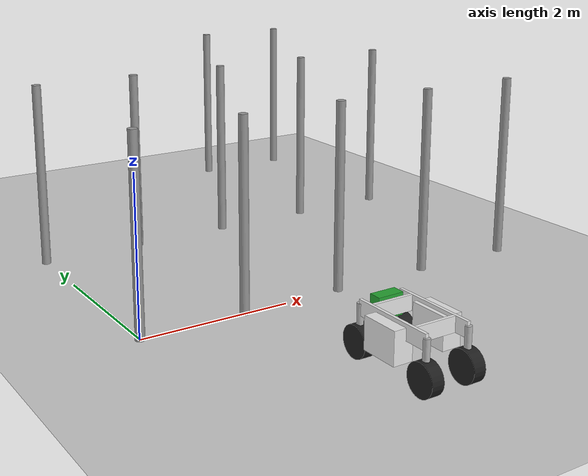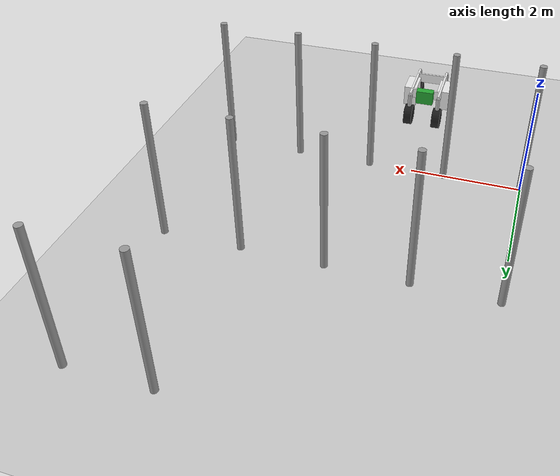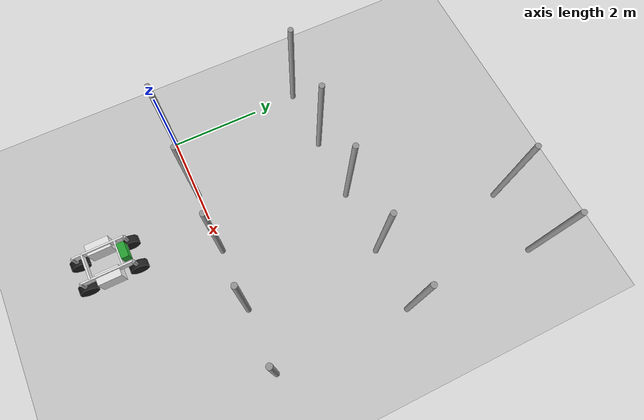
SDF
<sdf version="1.6">
 <world name="default">
  <model name="ground_plane">
   <static>1</static>
   <link name="link">
    <collision name="collision">
     <geometry><plane><normal>0 0 1</normal><size>100 100</size></plane></geometry>
     <surface><friction><ode><mu>100</mu><mu2>50</mu2></ode></friction></surface>
    </collision>
    <visual name="visual">
     <cast_shadows>0</cast_shadows>
     <geometry><plane><normal>0 0 1</normal><size>100 100</size></plane></geometry>
     <material>
      <script><uri>file://media/materials/scripts/gazebo.material</uri><name>Gazebo/Grey</name></script>
     </material>
    </visual>
   </link>
  </model>
  <model name="pole_8">
   <link name="link_0">
    <inertial>
     <mass>0.0364582</mass>
     <inertia>
      <ixx>0.00312124</ixx>
      <ixy>0</ixy>
      <ixz>0</ixz>
      <iyy>0.00312124</iyy>
      <iyz>0</iyz>
      <izz>0.00016615</izz>
     </inertia>
    </inertial>
    <visual name="visual">
     <geometry><cylinder><radius>0.06</radius><length>2.5</length></cylinder></geometry>
     <material>
      <lighting>1</lighting>
      <script><uri>file://media/materials/scripts/gazebo.material</uri><name>Gazebo/Grey</name></script>
      <ambient>0.3 0.3 0.3 1</ambient>
      <diffuse>0.7 0.7 0.7 1</diffuse>
      <specular>0.01 0.01 0.01 1</specular>
      <emissive>0 0 0 1</emissive>
      <shader type="vertex"><normal_map>__default__</normal_map></shader>
     </material>
    </visual>
    <collision name="collision">
     <geometry><cylinder><radius>0.06</radius><length>2.5</length></cylinder></geometry>
     <surface>
      <friction>
       <ode><mu>1</mu><mu2>1</mu2><fdir1>0 0 0</fdir1><slip1>0</slip1><slip2>0</slip2></ode>
       <torsional>
        <coefficient>1</coefficient>
        <patch_radius>0</patch_radius>
        <surface_radius>0</surface_radius>
        <use_patch_radius>1</use_patch_radius>
        <ode><slip>0</slip></ode>
       </torsional>
      </friction>
      <bounce><restitution_coefficient>0</restitution_coefficient><threshold>1e+06</threshold></bounce>
      <contact>
       <collide_without_contact>0</collide_without_contact>
       <collide_without_contact_bitmask>1</collide_without_contact_bitmask>
       <collide_bitmask>1</collide_bitmask>
       <ode>
        <soft_cfm>0</soft_cfm>
        <soft_erp>0.2</soft_erp>
        <kp>1e+13</kp>
        <kd>1</kd>
        <max_vel>0.01</max_vel>
        <min_depth>0</min_depth>
       </ode>
       <bullet>
        <split_impulse>1</split_impulse>
        <split_impulse_penetration_threshold>-0.01</split_impulse_penetration_threshold>
        <soft_cfm>0</soft_cfm>
        <soft_erp>0.2</soft_erp>
        <kp>1e+13</kp>
        <kd>1</kd>
       </bullet>
      </contact>
     </surface>
    </collision>
   </link>
   <static>0</static>
   <pose>1.40421 0.001404 1.25 0 1e-06 -0.018336</pose>
  </model>
  <model name="pole_9">
   <link name="link_0">
    <inertial>
     <mass>0.0364582</mass>
     <inertia>
      <ixx>0.00312124</ixx>
      <ixy>0</ixy>
      <ixz>0</ixz>
      <iyy>0.00312124</iyy>
      <iyz>0</iyz>
      <izz>0.00016615</izz>
     </inertia>
    </inertial>
    <visual name="visual">
     <geometry><cylinder><radius>0.06</radius><length>2.5</length></cylinder></geometry>
     <material>
      <lighting>1</lighting>
      <script><uri>file://media/materials/scripts/gazebo.material</uri><name>Gazebo/Grey</name></script>
      <ambient>0.3 0.3 0.3 1</ambient>
      <diffuse>0.7 0.7 0.7 1</diffuse>
      <specular>0.01 0.01 0.01 1</specular>
      <emissive>0 0 0 1</emissive>
      <shader type="vertex"><normal_map>__default__</normal_map></shader>
     </material>
    </visual>
    <collision name="collision">
     <geometry><cylinder><radius>0.06</radius><length>2.5</length></cylinder></geometry>
     <surface>
      <friction>
       <ode><mu>1</mu><mu2>1</mu2><fdir1>0 0 0</fdir1><slip1>0</slip1><slip2>0</slip2></ode>
       <torsional>
        <coefficient>1</coefficient>
        <patch_radius>0</patch_radius>
        <surface_radius>0</surface_radius>
        <use_patch_radius>1</use_patch_radius>
        <ode><slip>0</slip></ode>
       </torsional>
      </friction>
      <bounce><restitution_coefficient>0</restitution_coefficient><threshold>1e+06</threshold></bounce>
      <contact>
       <collide_without_contact>0</collide_without_contact>
       <collide_without_contact_bitmask>1</collide_without_contact_bitmask>
       <collide_bitmask>1</collide_bitmask>
       <ode>
        <soft_cfm>0</soft_cfm>
        <soft_erp>0.2</soft_erp>
        <kp>1e+13</kp>
        <kd>1</kd>
        <max_vel>0.01</max_vel>
        <min_depth>0</min_depth>
       </ode>
       <bullet>
        <split_impulse>1</split_impulse>
        <split_impulse_penetration_threshold>-0.01</split_impulse_penetration_threshold>
        <soft_cfm>0</soft_cfm>
        <soft_erp>0.2</soft_erp>
        <kp>1e+13</kp>
        <kd>1</kd>
       </bullet>
      </contact>
     </surface>
    </collision>
   </link>
   <static>0</static>
   <pose>2.80801 0.0015 1.25 -1e-06 -1e-06 -0.036118</pose>
  </model>
  <model name="pole_10">
   <link name="link_0">
    <inertial>
     <mass>0.0364582</mass>
     <inertia>
      <ixx>0.00312124</ixx>
      <ixy>0</ixy>
      <ixz>0</ixz>
      <iyy>0.00312124</iyy>
      <iyz>0</iyz>
      <izz>0.00016615</izz>
     </inertia>
    </inertial>
    <visual name="visual">
     <geometry><cylinder><radius>0.06</radius><length>2.5</length></cylinder></geometry>
     <material>
      <lighting>1</lighting>
      <script><uri>file://media/materials/scripts/gazebo.material</uri><name>Gazebo/Grey</name></script>
      <ambient>0.3 0.3 0.3 1</ambient>
      <diffuse>0.7 0.7 0.7 1</diffuse>
      <specular>0.01 0.01 0.01 1</specular>
      <emissive>0 0 0 1</emissive>
      <shader type="vertex"><normal_map>__default__</normal_map></shader>
     </material>
    </visual>
    <collision name="collision">
     <geometry><cylinder><radius>0.06</radius><length>2.5</length></cylinder></geometry>
     <surface>
      <friction>
       <ode><mu>1</mu><mu2>1</mu2><fdir1>0 0 0</fdir1><slip1>0</slip1><slip2>0</slip2></ode>
       <torsional>
        <coefficient>1</coefficient>
        <patch_radius>0</patch_radius>
        <surface_radius>0</surface_radius>
        <use_patch_radius>1</use_patch_radius>
        <ode><slip>0</slip></ode>
       </torsional>
      </friction>
      <bounce><restitution_coefficient>0</restitution_coefficient><threshold>1e+06</threshold></bounce>
      <contact>
       <collide_without_contact>0</collide_without_contact>
       <collide_without_contact_bitmask>1</collide_without_contact_bitmask>
       <collide_bitmask>1</collide_bitmask>
       <ode>
        <soft_cfm>0</soft_cfm>
        <soft_erp>0.2</soft_erp>
        <kp>1e+13</kp>
        <kd>1</kd>
        <max_vel>0.01</max_vel>
        <min_depth>0</min_depth>
       </ode>
       <bullet>
        <split_impulse>1</split_impulse>
        <split_impulse_penetration_threshold>-0.01</split_impulse_penetration_threshold>
        <soft_cfm>0</soft_cfm>
        <soft_erp>0.2</soft_erp>
        <kp>1e+13</kp>
        <kd>1</kd>
       </bullet>
      </contact>
     </surface>
    </collision>
   </link>
   <static>0</static>
   <pose>4.20395 0.00148 1.25 1e-06 4e-06 -0.019904</pose>
  </model>
  <model name="pole_11">
   <link name="link_0">
    <inertial>
     <mass>0.0364582</mass>
     <inertia>
      <ixx>0.00312124</ixx>
      <ixy>0</ixy>
      <ixz>0</ixz>
      <iyy>0.00312124</iyy>
      <iyz>0</iyz>
      <izz>0.00016615</izz>
     </inertia>
    </inertial>
    <visual name="visual">
     <geometry><cylinder><radius>0.06</radius><length>2.5</length></cylinder></geometry>
     <material>
      <lighting>1</lighting>
      <script><uri>file://media/materials/scripts/gazebo.material</uri><name>Gazebo/Grey</name></script>
      <ambient>0.3 0.3 0.3 1</ambient>
      <diffuse>0.7 0.7 0.7 1</diffuse>
      <specular>0.01 0.01 0.01 1</specular>
      <emissive>0 0 0 1</emissive>
      <shader type="vertex"><normal_map>__default__</normal_map></shader>
     </material>
    </visual>
    <collision name="collision">
     <geometry><cylinder><radius>0.06</radius><length>2.5</length></cylinder></geometry>
     <surface>
      <friction>
       <ode><mu>1</mu><mu2>1</mu2><fdir1>0 0 0</fdir1><slip1>0</slip1><slip2>0</slip2></ode>
       <torsional>
        <coefficient>1</coefficient>
        <patch_radius>0</patch_radius>
        <surface_radius>0</surface_radius>
        <use_patch_radius>1</use_patch_radius>
        <ode><slip>0</slip></ode>
       </torsional>
      </friction>
      <bounce><restitution_coefficient>0</restitution_coefficient><threshold>1e+06</threshold></bounce>
      <contact>
       <collide_without_contact>0</collide_without_contact>
       <collide_without_contact_bitmask>1</collide_without_contact_bitmask>
       <collide_bitmask>1</collide_bitmask>
       <ode>
        <soft_cfm>0</soft_cfm>
        <soft_erp>0.2</soft_erp>
        <kp>1e+13</kp>
        <kd>1</kd>
        <max_vel>0.01</max_vel>
        <min_depth>0</min_depth>
       </ode>
       <bullet>
        <split_impulse>1</split_impulse>
        <split_impulse_penetration_threshold>-0.01</split_impulse_penetration_threshold>
        <soft_cfm>0</soft_cfm>
        <soft_erp>0.2</soft_erp>
        <kp>1e+13</kp>
        <kd>1</kd>
       </bullet>
      </contact>
     </surface>
    </collision>
   </link>
   <static>0</static>
   <pose>5.61622 0.00124 1.25 -1e-06 -1e-06 -0.019713</pose>
  </model>
  <model name="pole_11_clone">
   <link name="link_0">
    <inertial>
     <mass>0.0364582</mass>
     <inertia>
      <ixx>0.00312124</ixx>
      <ixy>0</ixy>
      <ixz>0</ixz>
      <iyy>0.00312124</iyy>
      <iyz>0</iyz>
      <izz>0.00016615</izz>
     </inertia>
    </inertial>
    <visual name="visual">
     <geometry><cylinder><radius>0.06</radius><length>2.5</length></cylinder></geometry>
     <material>
      <lighting>1</lighting>
      <script><uri>file://media/materials/scripts/gazebo.material</uri><name>Gazebo/Grey</name></script>
      <ambient>0.3 0.3 0.3 1</ambient>
      <diffuse>0.7 0.7 0.7 1</diffuse>
      <specular>0.01 0.01 0.01 1</specular>
      <emissive>0 0 0 1</emissive>
      <shader type="vertex"><normal_map>__default__</normal_map></shader>
     </material>
    </visual>
    <collision name="collision">
     <geometry><cylinder><radius>0.06</radius><length>2.5</length></cylinder></geometry>
     <surface>
      <friction>
       <ode><mu>1</mu><mu2>1</mu2><fdir1>0 0 0</fdir1><slip1>0</slip1><slip2>0</slip2></ode>
       <torsional>
        <coefficient>1</coefficient>
        <patch_radius>0</patch_radius>
        <surface_radius>0</surface_radius>
        <use_patch_radius>1</use_patch_radius>
        <ode><slip>0</slip></ode>
       </torsional>
      </friction>
      <bounce><restitution_coefficient>0</restitution_coefficient><threshold>1e+06</threshold></bounce>
      <contact>
       <collide_without_contact>0</collide_without_contact>
       <collide_without_contact_bitmask>1</collide_without_contact_bitmask>
       <collide_bitmask>1</collide_bitmask>
       <ode>
        <soft_cfm>0</soft_cfm>
        <soft_erp>0.2</soft_erp>
        <kp>1e+13</kp>
        <kd>1</kd>
        <max_vel>0.01</max_vel>
        <min_depth>0</min_depth>
       </ode>
       <bullet>
        <split_impulse>1</split_impulse>
        <split_impulse_penetration_threshold>-0.01</split_impulse_penetration_threshold>
        <soft_cfm>0</soft_cfm>
        <soft_erp>0.2</soft_erp>
        <kp>1e+13</kp>
        <kd>1</kd>
       </bullet>
      </contact>
     </surface>
    </collision>
   </link>
   <static>0</static>
   <pose>0.000229 2.98148 1.25 -1e-06 1e-06 -0.018464</pose>
  </model>
  <model name="pole_3">
   <link name="link_0">
    <inertial>
     <mass>0.0364582</mass>
     <inertia>
      <ixx>0.00312124</ixx>
      <ixy>0</ixy>
      <ixz>0</ixz>
      <iyy>0.00312124</iyy>
      <iyz>0</iyz>
      <izz>0.00016615</izz>
     </inertia>
    </inertial>
    <visual name="visual">
     <geometry><cylinder><radius>0.06</radius><length>2.5</length></cylinder></geometry>
     <material>
      <lighting>1</lighting>
      <script><uri>file://media/materials/scripts/gazebo.material</uri><name>Gazebo/Grey</name></script>
      <ambient>0.3 0.3 0.3 1</ambient>
      <diffuse>0.7 0.7 0.7 1</diffuse>
      <specular>0.01 0.01 0.01 1</specular>
      <emissive>0 0 0 1</emissive>
      <shader type="vertex"><normal_map>__default__</normal_map></shader>
     </material>
    </visual>
    <collision name="collision">
     <geometry><cylinder><radius>0.06</radius><length>2.5</length></cylinder></geometry>
     <surface>
      <friction>
       <ode><mu>1</mu><mu2>1</mu2><fdir1>0 0 0</fdir1><slip1>0</slip1><slip2>0</slip2></ode>
       <torsional>
        <coefficient>1</coefficient>
        <patch_radius>0</patch_radius>
        <surface_radius>0</surface_radius>
        <use_patch_radius>1</use_patch_radius>
        <ode><slip>0</slip></ode>
       </torsional>
      </friction>
      <bounce><restitution_coefficient>0</restitution_coefficient><threshold>1e+06</threshold></bounce>
      <contact>
       <collide_without_contact>0</collide_without_contact>
       <collide_without_contact_bitmask>1</collide_without_contact_bitmask>
       <collide_bitmask>1</collide_bitmask>
       <ode>
        <soft_cfm>0</soft_cfm>
        <soft_erp>0.2</soft_erp>
        <kp>1e+13</kp>
        <kd>1</kd>
        <max_vel>0.01</max_vel>
        <min_depth>0</min_depth>
       </ode>
       <bullet>
        <split_impulse>1</split_impulse>
        <split_impulse_penetration_threshold>-0.01</split_impulse_penetration_threshold>
        <soft_cfm>0</soft_cfm>
        <soft_erp>0.2</soft_erp>
        <kp>1e+13</kp>
        <kd>1</kd>
       </bullet>
      </contact>
     </surface>
    </collision>
   </link>
   <static>0</static>
   <pose>1.40471 2.98102 1.25 -0 2e-06 -0.012848</pose>
  </model>
  <model name="pole_5">
   <link name="link_0">
    <inertial>
     <mass>0.0364582</mass>
     <inertia>
      <ixx>0.00312124</ixx>
      <ixy>0</ixy>
      <ixz>0</ixz>
      <iyy>0.00312124</iyy>
      <iyz>0</iyz>
      <izz>0.00016615</izz>
     </inertia>
    </inertial>
    <visual name="visual">
     <geometry><cylinder><radius>0.06</radius><length>2.5</length></cylinder></geometry>
     <material>
      <lighting>1</lighting>
      <script><uri>file://media/materials/scripts/gazebo.material</uri><name>Gazebo/Grey</name></script>
      <ambient>0.3 0.3 0.3 1</ambient>
      <diffuse>0.7 0.7 0.7 1</diffuse>
      <specular>0.01 0.01 0.01 1</specular>
      <emissive>0 0 0 1</emissive>
      <shader type="vertex"><normal_map>__default__</normal_map></shader>
     </material>
    </visual>
    <collision name="collision">
     <geometry><cylinder><radius>0.06</radius><length>2.5</length></cylinder></geometry>
     <surface>
      <friction>
       <ode><mu>1</mu><mu2>1</mu2><fdir1>0 0 0</fdir1><slip1>0</slip1><slip2>0</slip2></ode>
       <torsional>
        <coefficient>1</coefficient>
        <patch_radius>0</patch_radius>
        <surface_radius>0</surface_radius>
        <use_patch_radius>1</use_patch_radius>
        <ode><slip>0</slip></ode>
       </torsional>
      </friction>
      <bounce><restitution_coefficient>0</restitution_coefficient><threshold>1e+06</threshold></bounce>
      <contact>
       <collide_without_contact>0</collide_without_contact>
       <collide_without_contact_bitmask>1</collide_without_contact_bitmask>
       <collide_bitmask>1</collide_bitmask>
       <ode>
        <soft_cfm>0</soft_cfm>
        <soft_erp>0.2</soft_erp>
        <kp>1e+13</kp>
        <kd>1</kd>
        <max_vel>0.01</max_vel>
        <min_depth>0</min_depth>
       </ode>
       <bullet>
        <split_impulse>1</split_impulse>
        <split_impulse_penetration_threshold>-0.01</split_impulse_penetration_threshold>
        <soft_cfm>0</soft_cfm>
        <soft_erp>0.2</soft_erp>
        <kp>1e+13</kp>
        <kd>1</kd>
       </bullet>
      </contact>
     </surface>
    </collision>
   </link>
   <static>0</static>
   <pose>2.79582 2.98103 1.24999 -1e-06 -1e-06 -0.013933</pose>
  </model>
  <model name="pole_6">
   <link name="link_0">
    <inertial>
     <mass>0.0364582</mass>
     <inertia>
      <ixx>0.00312124</ixx>
      <ixy>0</ixy>
      <ixz>0</ixz>
      <iyy>0.00312124</iyy>
      <iyz>0</iyz>
      <izz>0.00016615</izz>
     </inertia>
    </inertial>
    <visual name="visual">
     <geometry><cylinder><radius>0.06</radius><length>2.5</length></cylinder></geometry>
     <material>
      <lighting>1</lighting>
      <script><uri>file://media/materials/scripts/gazebo.material</uri><name>Gazebo/Grey</name></script>
      <ambient>0.3 0.3 0.3 1</ambient>
      <diffuse>0.7 0.7 0.7 1</diffuse>
      <specular>0.01 0.01 0.01 1</specular>
      <emissive>0 0 0 1</emissive>
      <shader type="vertex"><normal_map>__default__</normal_map></shader>
     </material>
    </visual>
    <collision name="collision">
     <geometry><cylinder><radius>0.06</radius><length>2.5</length></cylinder></geometry>
     <surface>
      <friction>
       <ode><mu>1</mu><mu2>1</mu2><fdir1>0 0 0</fdir1><slip1>0</slip1><slip2>0</slip2></ode>
       <torsional>
        <coefficient>1</coefficient>
        <patch_radius>0</patch_radius>
        <surface_radius>0</surface_radius>
        <use_patch_radius>1</use_patch_radius>
        <ode><slip>0</slip></ode>
       </torsional>
      </friction>
      <bounce><restitution_coefficient>0</restitution_coefficient><threshold>1e+06</threshold></bounce>
      <contact>
       <collide_without_contact>0</collide_without_contact>
       <collide_without_contact_bitmask>1</collide_without_contact_bitmask>
       <collide_bitmask>1</collide_bitmask>
       <ode>
        <soft_cfm>0</soft_cfm>
        <soft_erp>0.2</soft_erp>
        <kp>1e+13</kp>
        <kd>1</kd>
        <max_vel>0.01</max_vel>
        <min_depth>0</min_depth>
       </ode>
       <bullet>
        <split_impulse>1</split_impulse>
        <split_impulse_penetration_threshold>-0.01</split_impulse_penetration_threshold>
        <soft_cfm>0</soft_cfm>
        <soft_erp>0.2</soft_erp>
        <kp>1e+13</kp>
        <kd>1</kd>
       </bullet>
      </contact>
     </surface>
    </collision>
   </link>
   <static>0</static>
   <pose>4.22239 2.98106 1.24999 -0 1e-06 -0.012593</pose>
  </model>
  <model name="pole_7">
   <link name="link_0">
    <inertial>
     <mass>0.0364582</mass>
     <inertia>
      <ixx>0.00312124</ixx>
      <ixy>0</ixy>
      <ixz>0</ixz>
      <iyy>0.00312124</iyy>
      <iyz>0</iyz>
      <izz>0.00016615</izz>
     </inertia>
    </inertial>
    <visual name="visual">
     <geometry><cylinder><radius>0.06</radius><length>2.5</length></cylinder></geometry>
     <material>
      <lighting>1</lighting>
      <script><uri>file://media/materials/scripts/gazebo.material</uri><name>Gazebo/Grey</name></script>
      <ambient>0.3 0.3 0.3 1</ambient>
      <diffuse>0.7 0.7 0.7 1</diffuse>
      <specular>0.01 0.01 0.01 1</specular>
      <emissive>0 0 0 1</emissive>
      <shader type="vertex"><normal_map>__default__</normal_map></shader>
     </material>
    </visual>
    <collision name="collision">
     <geometry><cylinder><radius>0.06</radius><length>2.5</length></cylinder></geometry>
     <surface>
      <friction>
       <ode><mu>1</mu><mu2>1</mu2><fdir1>0 0 0</fdir1><slip1>0</slip1><slip2>0</slip2></ode>
       <torsional>
        <coefficient>1</coefficient>
        <patch_radius>0</patch_radius>
        <surface_radius>0</surface_radius>
        <use_patch_radius>1</use_patch_radius>
        <ode><slip>0</slip></ode>
       </torsional>
      </friction>
      <bounce><restitution_coefficient>0</restitution_coefficient><threshold>1e+06</threshold></bounce>
      <contact>
       <collide_without_contact>0</collide_without_contact>
       <collide_without_contact_bitmask>1</collide_without_contact_bitmask>
       <collide_bitmask>1</collide_bitmask>
       <ode>
        <soft_cfm>0</soft_cfm>
        <soft_erp>0.2</soft_erp>
        <kp>1e+13</kp>
        <kd>1</kd>
        <max_vel>0.01</max_vel>
        <min_depth>0</min_depth>
       </ode>
       <bullet>
        <split_impulse>1</split_impulse>
        <split_impulse_penetration_threshold>-0.01</split_impulse_penetration_threshold>
        <soft_cfm>0</soft_cfm>
        <soft_erp>0.2</soft_erp>
        <kp>1e+13</kp>
        <kd>1</kd>
       </bullet>
      </contact>
     </surface>
    </collision>
   </link>
   <static>0</static>
   <pose>5.60731 2.98105 1.24999 0 0 -0.011558</pose>
  </model>
  <model name="pole_14">
   <link name="link_0">
    <inertial>
     <mass>0.0364582</mass>
     <inertia>
      <ixx>0.00312124</ixx>
      <ixy>0</ixy>
      <ixz>0</ixz>
      <iyy>0.00312124</iyy>
      <iyz>0</iyz>
      <izz>0.00016615</izz>
     </inertia>
    </inertial>
    <visual name="visual">
     <geometry><cylinder><radius>0.06</radius><length>2.5</length></cylinder></geometry>
     <material>
      <lighting>1</lighting>
      <script><uri>file://media/materials/scripts/gazebo.material</uri><name>Gazebo/Grey</name></script>
      <ambient>0.3 0.3 0.3 1</ambient>
      <diffuse>0.7 0.7 0.7 1</diffuse>
      <specular>0.01 0.01 0.01 1</specular>
      <emissive>0 0 0 1</emissive>
      <shader type="vertex"><normal_map>__default__</normal_map></shader>
     </material>
    </visual>
    <collision name="collision">
     <geometry><cylinder><radius>0.06</radius><length>2.5</length></cylinder></geometry>
     <surface>
      <friction>
       <ode><mu>1</mu><mu2>1</mu2><fdir1>0 0 0</fdir1><slip1>0</slip1><slip2>0</slip2></ode>
       <torsional>
        <coefficient>1</coefficient>
        <patch_radius>0</patch_radius>
        <surface_radius>0</surface_radius>
        <use_patch_radius>1</use_patch_radius>
        <ode><slip>0</slip></ode>
       </torsional>
      </friction>
      <bounce><restitution_coefficient>0</restitution_coefficient><threshold>1e+06</threshold></bounce>
      <contact>
       <collide_without_contact>0</collide_without_contact>
       <collide_without_contact_bitmask>1</collide_without_contact_bitmask>
       <collide_bitmask>1</collide_bitmask>
       <ode>
        <soft_cfm>0</soft_cfm>
        <soft_erp>0.2</soft_erp>
        <kp>1e+13</kp>
        <kd>1</kd>
        <max_vel>0.01</max_vel>
        <min_depth>0</min_depth>
       </ode>
       <bullet>
        <split_impulse>1</split_impulse>
        <split_impulse_penetration_threshold>-0.01</split_impulse_penetration_threshold>
        <soft_cfm>0</soft_cfm>
        <soft_erp>0.2</soft_erp>
        <kp>1e+13</kp>
        <kd>1</kd>
       </bullet>
      </contact>
     </surface>
    </collision>
   </link>
   <static>0</static>
   <pose>4.2195 5.96104 1.24999 0 -1e-06 -0.009963</pose>
  </model>
  <model name="pole_15">
   <link name="link_0">
    <inertial>
     <mass>0.0364582</mass>
     <inertia>
      <ixx>0.00312124</ixx>
      <ixy>0</ixy>
      <ixz>0</ixz>
      <iyy>0.00312124</iyy>
      <iyz>0</iyz>
      <izz>0.00016615</izz>
     </inertia>
    </inertial>
    <visual name="visual">
     <geometry><cylinder><radius>0.06</radius><length>2.5</length></cylinder></geometry>
     <material>
      <lighting>1</lighting>
      <script><uri>file://media/materials/scripts/gazebo.material</uri><name>Gazebo/Grey</name></script>
      <ambient>0.3 0.3 0.3 1</ambient>
      <diffuse>0.7 0.7 0.7 1</diffuse>
      <specular>0.01 0.01 0.01 1</specular>
      <emissive>0 0 0 1</emissive>
      <shader type="vertex"><normal_map>__default__</normal_map></shader>
     </material>
    </visual>
    <collision name="collision">
     <geometry><cylinder><radius>0.06</radius><length>2.5</length></cylinder></geometry>
     <surface>
      <friction>
       <ode><mu>1</mu><mu2>1</mu2><fdir1>0 0 0</fdir1><slip1>0</slip1><slip2>0</slip2></ode>
       <torsional>
        <coefficient>1</coefficient>
        <patch_radius>0</patch_radius>
        <surface_radius>0</surface_radius>
        <use_patch_radius>1</use_patch_radius>
        <ode><slip>0</slip></ode>
       </torsional>
      </friction>
      <bounce><restitution_coefficient>0</restitution_coefficient><threshold>1e+06</threshold></bounce>
      <contact>
       <collide_without_contact>0</collide_without_contact>
       <collide_without_contact_bitmask>1</collide_without_contact_bitmask>
       <collide_bitmask>1</collide_bitmask>
       <ode>
        <soft_cfm>0</soft_cfm>
        <soft_erp>0.2</soft_erp>
        <kp>1e+13</kp>
        <kd>1</kd>
        <max_vel>0.01</max_vel>
        <min_depth>0</min_depth>
       </ode>
       <bullet>
        <split_impulse>1</split_impulse>
        <split_impulse_penetration_threshold>-0.01</split_impulse_penetration_threshold>
        <soft_cfm>0</soft_cfm>
        <soft_erp>0.2</soft_erp>
        <kp>1e+13</kp>
        <kd>1</kd>
       </bullet>
      </contact>
     </surface>
    </collision>
   </link>
   <static>0</static>
   <pose>5.6235 5.96101 1.25 0 1e-06 -0.010616</pose>
  </model>
  <model name="thorvald_ii">
   <link name="front_frame">
    <inertial>
     <pose>-0.486949 0 -0.042757 0 -0 0</pose>
     <mass>44.3428</mass>
     <inertia>
      <ixx>22.1052</ixx>
      <ixy>3.159</ixy>
      <ixz>4.75844</ixz>
      <iyy>21.4953</iyy>
      <iyz>7.54392</iyz>
      <izz>16.1935</izz>
     </inertia>
    </inertial>
    <collision name="front_frame_fixed_joint_lump__front_link_collision">
     <pose>-0.2 0 0 0 -0 0</pose>
     <geometry><box><size>0.04 0.57 0.19</size></box></geometry>
    </collision>
    <collision name="front_frame_fixed_joint_lump__frame_left_link_collision_1">
     <pose>-0.5475 0.285 0 0 -0 0</pose>
     <geometry><box><size>1.095 0.04 0.19</size></box></geometry>
    </collision>
    <collision name="front_frame_fixed_joint_lump__left_battery_link_collision_2">
     <pose>-0.5475 0.335 -0.15 0 -0 0</pose>
     <geometry><box><size>0.5 0.25 0.4</size></box></geometry>
    </collision>
    <collision name="front_frame_fixed_joint_lump__frame_right_link_collision_3">
     <pose>-0.5475 -0.285 0 0 -0 0</pose>
     <geometry><box><size>1.095 0.04 0.19</size></box></geometry>
    </collision>
    <collision name="front_frame_fixed_joint_lump__right_battery_link_collision_4">
     <pose>-0.5475 -0.335 -0.15 0 -0 0</pose>
     <geometry><box><size>0.5 0.25 0.4</size></box></geometry>
    </collision>
    <collision name="front_frame_fixed_joint_lump__sensor_box_link_collision_5">
     <pose>-0.1 0 0 0 -0 0</pose>
     <geometry><box><size>0.159 0.336 0.27</size></box></geometry>
    </collision>
    <collision name="front_frame_fixed_joint_lump__rear_link_collision_6">
     <pose>-0.895 0 0 0 -0 0</pose>
     <geometry><box><size>0.04 0.57 0.19</size></box></geometry>
    </collision>
    <visual name="front_frame_fixed_joint_lump__front_link_visual">
     <pose>-0.2 0 0 0 -0 0</pose>
     <geometry><box><size>0.04 0.57 0.19</size></box></geometry>
     <material>
      <script><name>Gazebo/White</name><uri>file://media/materials/scripts/gazebo.material</uri></script>
     </material>
    </visual>
    <visual name="front_frame_fixed_joint_lump__frame_left_link_visual_1">
     <pose>-0.5475 0.285 0 0 -0 0</pose>
     <geometry><box><size>1.095 0.04 0.19</size></box></geometry>
     <material>
      <script><name>Gazebo/White</name><uri>file://media/materials/scripts/gazebo.material</uri></script>
     </material>
    </visual>
    <visual name="front_frame_fixed_joint_lump__left_battery_link_visual_2">
     <pose>-0.5475 0.335 -0.15 0 -0 0</pose>
     <geometry><box><size>0.5 0.25 0.4</size></box></geometry>
     <material>
      <script><name>Gazebo/White</name><uri>file://media/materials/scripts/gazebo.material</uri></script>
     </material>
    </visual>
    <visual name="front_frame_fixed_joint_lump__frame_right_link_visual_3">
     <pose>-0.5475 -0.285 0 0 -0 0</pose>
     <geometry><box><size>1.095 0.04 0.19</size></box></geometry>
     <material>
      <script><name>Gazebo/White</name><uri>file://media/materials/scripts/gazebo.material</uri></script>
     </material>
    </visual>
    <visual name="front_frame_fixed_joint_lump__right_battery_link_visual_4">
     <pose>-0.5475 -0.335 -0.15 0 -0 0</pose>
     <geometry><box><size>0.5 0.25 0.4</size></box></geometry>
     <material>
      <script><name>Gazebo/White</name><uri>file://media/materials/scripts/gazebo.material</uri></script>
     </material>
    </visual>
    <visual name="front_frame_fixed_joint_lump__sensor_box_link_visual_5">
     <pose>-0.1 0 0 0 -0 0</pose>
     <geometry><box><size>0.159 0.336 0.27</size></box></geometry>
     <material>
      <script><name>Gazebo/Green</name><uri>file://media/materials/scripts/gazebo.material</uri></script>
     </material>
    </visual>
    <visual name="front_frame_fixed_joint_lump__rear_link_visual_6">
     <pose>-0.895 0 0 0 -0 0</pose>
     <geometry><box><size>0.04 0.57 0.19</size></box></geometry>
     <material>
      <script><name>Gazebo/White</name><uri>file://media/materials/scripts/gazebo.material</uri></script>
     </material>
    </visual>
   </link>
   <link name="front_left_leg">
    <pose>0 0.285 -0.2 0 -0 0</pose>
    <inertial>
     <mass>18.0411</mass>
     <inertia>
      <ixx>0.420701</ixx>
      <ixy>-0.0682293</ixy>
      <ixz>0.00112609</ixz>
      <iyy>0.140328</iyy>
      <iyz>0.0416406</iyz>
      <izz>0.371963</izz>
     </inertia>
    </inertial>
    <collision name="front_left_leg_collision">
     <geometry><cylinder><length>0.495</length><radius>0.04</radius></cylinder></geometry>
    </collision>
    <visual name="front_left_leg_visual">
     <geometry><cylinder><length>0.495</length><radius>0.04</radius></cylinder></geometry>
    </visual>
   </link>
   <joint name="steering2" type="revolute">
    <child>front_left_leg</child>
    <parent>front_frame</parent>
    <axis>
     <xyz>0 0 1</xyz>
     <limit><lower>-1e+16</lower><upper>1e+16</upper></limit>
     <dynamics><spring_reference>0</spring_reference><spring_stiffness>0</spring_stiffness></dynamics>
     <use_parent_model_frame>1</use_parent_model_frame>
    </axis>
   </joint>
   <link name="front_left_wheel">
    <pose>0 0.285 -0.4 -1.5708 0 0</pose>
    <inertial>
     <mass>6.38698</mass>
     <inertia>
      <ixx>0.417288</ixx>
      <ixy>-0.00126433</ixy>
      <ixz>0</ixz>
      <iyy>0.0993111</iyy>
      <iyz>-2e-09</iyz>
      <izz>0.35479</izz>
     </inertia>
    </inertial>
    <collision name="front_left_wheel_collision">
     <geometry><cylinder><length>0.16</length><radius>0.2</radius></cylinder></geometry>
    </collision>
    <visual name="front_left_wheel_visual">
     <geometry><cylinder><length>0.16</length><radius>0.2</radius></cylinder></geometry>
     <material>
      <script><name>Gazebo/Black</name><uri>file://media/materials/scripts/gazebo.material</uri></script>
     </material>
    </visual>
   </link>
   <joint name="wheel2" type="revolute">
    <child>front_left_wheel</child>
    <parent>front_left_leg</parent>
    <axis>
     <xyz>0 1 0</xyz>
     <limit><lower>-1e+16</lower><upper>1e+16</upper></limit>
     <dynamics><spring_reference>0</spring_reference><spring_stiffness>0</spring_stiffness></dynamics>
     <use_parent_model_frame>1</use_parent_model_frame>
    </axis>
   </joint>
   <link name="rear_left_leg">
    <pose>-1.095 0.285 -0.2 0 -0 0</pose>
    <inertial>
     <mass>18.0411</mass>
     <inertia>
      <ixx>0.420701</ixx>
      <ixy>-0.0682293</ixy>
      <ixz>0.00112609</ixz>
      <iyy>0.140328</iyy>
      <iyz>0.0416406</iyz>
      <izz>0.371963</izz>
     </inertia>
    </inertial>
    <collision name="rear_left_leg_collision">
     <geometry><cylinder><length>0.495</length><radius>0.04</radius></cylinder></geometry>
    </collision>
    <visual name="rear_left_leg_visual">
     <geometry><cylinder><length>0.495</length><radius>0.04</radius></cylinder></geometry>
    </visual>
   </link>
   <joint name="steering3" type="revolute">
    <child>rear_left_leg</child>
    <parent>front_frame</parent>
    <axis>
     <xyz>0 0 1</xyz>
     <limit><lower>-1e+16</lower><upper>1e+16</upper></limit>
     <dynamics><spring_reference>0</spring_reference><spring_stiffness>0</spring_stiffness></dynamics>
     <use_parent_model_frame>1</use_parent_model_frame>
    </axis>
   </joint>
   <link name="rear_left_wheel">
    <pose>-1.095 0.285 -0.4 -1.5708 0 0</pose>
    <inertial>
     <mass>6.38698</mass>
     <inertia>
      <ixx>0.417288</ixx>
      <ixy>-0.00126433</ixy>
      <ixz>0</ixz>
      <iyy>0.0993111</iyy>
      <iyz>-2e-09</iyz>
      <izz>0.35479</izz>
     </inertia>
    </inertial>
    <collision name="rear_left_wheel_collision">
     <geometry><cylinder><length>0.16</length><radius>0.2</radius></cylinder></geometry>
    </collision>
    <visual name="rear_left_wheel_visual">
     <geometry><cylinder><length>0.16</length><radius>0.2</radius></cylinder></geometry>
     <material>
      <script><name>Gazebo/Black</name><uri>file://media/materials/scripts/gazebo.material</uri></script>
     </material>
    </visual>
   </link>
   <joint name="wheel3" type="revolute">
    <child>rear_left_wheel</child>
    <parent>rear_left_leg</parent>
    <axis>
     <xyz>0 1 0</xyz>
     <limit><lower>-1e+16</lower><upper>1e+16</upper></limit>
     <dynamics><spring_reference>0</spring_reference><spring_stiffness>0</spring_stiffness></dynamics>
     <use_parent_model_frame>1</use_parent_model_frame>
    </axis>
   </joint>
   <link name="rear_right_leg">
    <pose>-1.095 -0.285 -0.2 0 -0 0</pose>
    <inertial>
     <mass>18.0411</mass>
     <inertia>
      <ixx>0.420701</ixx>
      <ixy>-0.0682293</ixy>
      <ixz>0.00112609</ixz>
      <iyy>0.140328</iyy>
      <iyz>0.0416406</iyz>
      <izz>0.371963</izz>
     </inertia>
    </inertial>
    <collision name="rear_right_leg_collision">
     <geometry><cylinder><length>0.495</length><radius>0.04</radius></cylinder></geometry>
    </collision>
    <visual name="rear_right_leg_visual">
     <geometry><cylinder><length>0.495</length><radius>0.04</radius></cylinder></geometry>
    </visual>
   </link>
   <joint name="steering0" type="revolute">
    <child>rear_right_leg</child>
    <parent>front_frame</parent>
    <axis>
     <xyz>0 0 1</xyz>
     <limit><lower>-1e+16</lower><upper>1e+16</upper></limit>
     <dynamics><spring_reference>0</spring_reference><spring_stiffness>0</spring_stiffness></dynamics>
     <use_parent_model_frame>1</use_parent_model_frame>
    </axis>
   </joint>
   <link name="rear_right_wheel">
    <pose>-1.095 -0.285 -0.4 -1.5708 0 0</pose>
    <inertial>
     <mass>6.38698</mass>
     <inertia>
      <ixx>0.417288</ixx>
      <ixy>-0.00126433</ixy>
      <ixz>0</ixz>
      <iyy>0.0993111</iyy>
      <iyz>-2e-09</iyz>
      <izz>0.35479</izz>
     </inertia>
    </inertial>
    <collision name="rear_right_wheel_collision">
     <geometry><cylinder><length>0.16</length><radius>0.2</radius></cylinder></geometry>
    </collision>
    <visual name="rear_right_wheel_visual">
     <geometry><cylinder><length>0.16</length><radius>0.2</radius></cylinder></geometry>
     <material>
      <script><name>Gazebo/Black</name><uri>file://media/materials/scripts/gazebo.material</uri></script>
     </material>
    </visual>
   </link>
   <joint name="wheel0" type="revolute">
    <child>rear_right_wheel</child>
    <parent>rear_right_leg</parent>
    <axis>
     <xyz>0 1 0</xyz>
     <limit><lower>-1e+16</lower><upper>1e+16</upper></limit>
     <dynamics><spring_reference>0</spring_reference><spring_stiffness>0</spring_stiffness></dynamics>
     <use_parent_model_frame>1</use_parent_model_frame>
    </axis>
   </joint>
   <link name="front_right_leg">
    <pose>0 -0.285 -0.2 0 -0 0</pose>
    <inertial>
     <mass>18.0411</mass>
     <inertia>
      <ixx>0.420701</ixx>
      <ixy>-0.0682293</ixy>
      <ixz>0.00112609</ixz>
      <iyy>0.140328</iyy>
      <iyz>0.0416406</iyz>
      <izz>0.371963</izz>
     </inertia>
    </inertial>
    <collision name="front_right_leg_collision">
     <geometry><cylinder><length>0.495</length><radius>0.04</radius></cylinder></geometry>
    </collision>
    <visual name="front_right_leg_visual">
     <geometry><cylinder><length>0.495</length><radius>0.04</radius></cylinder></geometry>
    </visual>
   </link>
   <joint name="steering1" type="revolute">
    <child>front_right_leg</child>
    <parent>front_frame</parent>
    <axis>
     <xyz>0 0 1</xyz>
     <limit><lower>-1e+16</lower><upper>1e+16</upper></limit>
     <dynamics><spring_reference>0</spring_reference><spring_stiffness>0</spring_stiffness></dynamics>
     <use_parent_model_frame>1</use_parent_model_frame>
    </axis>
   </joint>
   <link name="front_right_wheel">
    <pose>0 -0.285 -0.4 -1.5708 0 0</pose>
    <inertial>
     <mass>6.38698</mass>
     <inertia>
      <ixx>0.417288</ixx>
      <ixy>-0.00126433</ixy>
      <ixz>0</ixz>
      <iyy>0.0993111</iyy>
      <iyz>-2e-09</iyz>
      <izz>0.35479</izz>
     </inertia>
    </inertial>
    <collision name="front_right_wheel_collision">
     <geometry><cylinder><length>0.16</length><radius>0.2</radius></cylinder></geometry>
    </collision>
    <visual name="front_right_wheel_visual">
     <geometry><cylinder><length>0.16</length><radius>0.2</radius></cylinder></geometry>
     <material>
      <script><name>Gazebo/Black</name><uri>file://media/materials/scripts/gazebo.material</uri></script>
     </material>
    </visual>
   </link>
   <joint name="wheel1" type="revolute">
    <child>front_right_wheel</child>
    <parent>front_right_leg</parent>
    <axis>
     <xyz>0 1 0</xyz>
     <limit><lower>-1e+16</lower><upper>1e+16</upper></limit>
     <dynamics><spring_reference>0</spring_reference><spring_stiffness>0</spring_stiffness></dynamics>
     <use_parent_model_frame>1</use_parent_model_frame>
    </axis>
   </joint>
   <pose>2.13968 -1.70952 0.599995 0 -0 1.57759</pose>
  </model>
  <model name="pole_24">
   <link name="link_0">
    <inertial>
     <mass>0.0364582</mass>
     <inertia>
      <ixx>0.00312124</ixx>
      <ixy>0</ixy>
      <ixz>0</ixz>
      <iyy>0.00312124</iyy>
      <iyz>0</iyz>
      <izz>0.00016615</izz>
     </inertia>
    </inertial>
    <visual name="visual">
     <geometry><cylinder><radius>0.06</radius><length>2.5</length></cylinder></geometry>
     <material>
      <lighting>1</lighting>
      <script><uri>file://media/materials/scripts/gazebo.material</uri><name>Gazebo/Grey</name></script>
      <ambient>0.3 0.3 0.3 1</ambient>
      <diffuse>0.7 0.7 0.7 1</diffuse>
      <specular>0.01 0.01 0.01 1</specular>
      <emissive>0 0 0 1</emissive>
      <shader type="vertex"><normal_map>__default__</normal_map></shader>
     </material>
    </visual>
    <collision name="collision">
     <geometry><cylinder><radius>0.06</radius><length>2.5</length></cylinder></geometry>
     <surface>
      <friction>
       <ode><mu>1</mu><mu2>1</mu2><fdir1>0 0 0</fdir1><slip1>0</slip1><slip2>0</slip2></ode>
       <torsional>
        <coefficient>1</coefficient>
        <patch_radius>0</patch_radius>
        <surface_radius>0</surface_radius>
        <use_patch_radius>1</use_patch_radius>
        <ode><slip>0</slip></ode>
       </torsional>
      </friction>
      <bounce><restitution_coefficient>0</restitution_coefficient><threshold>1e+06</threshold></bounce>
      <contact>
       <collide_without_contact>0</collide_without_contact>
       <collide_without_contact_bitmask>1</collide_without_contact_bitmask>
       <collide_bitmask>1</collide_bitmask>
       <ode>
        <soft_cfm>0</soft_cfm>
        <soft_erp>0.2</soft_erp>
        <kp>1e+13</kp>
        <kd>1</kd>
        <max_vel>0.01</max_vel>
        <min_depth>0</min_depth>
       </ode>
       <bullet>
        <split_impulse>1</split_impulse>
        <split_impulse_penetration_threshold>-0.01</split_impulse_penetration_threshold>
        <soft_cfm>0</soft_cfm>
        <soft_erp>0.2</soft_erp>
        <kp>1e+13</kp>
        <kd>1</kd>
       </bullet>
      </contact>
     </surface>
    </collision>
   </link>
   <static>0</static>
   <pose>2.6e-05 0.000126 1.24999 -1e-06 1e-06 -0.00248</pose>
  </model>
 </world>
</sdf>
